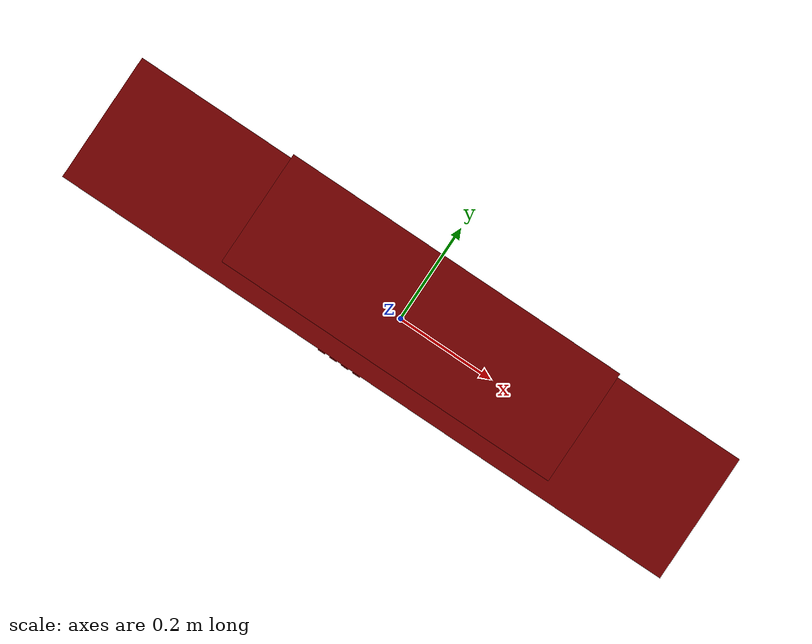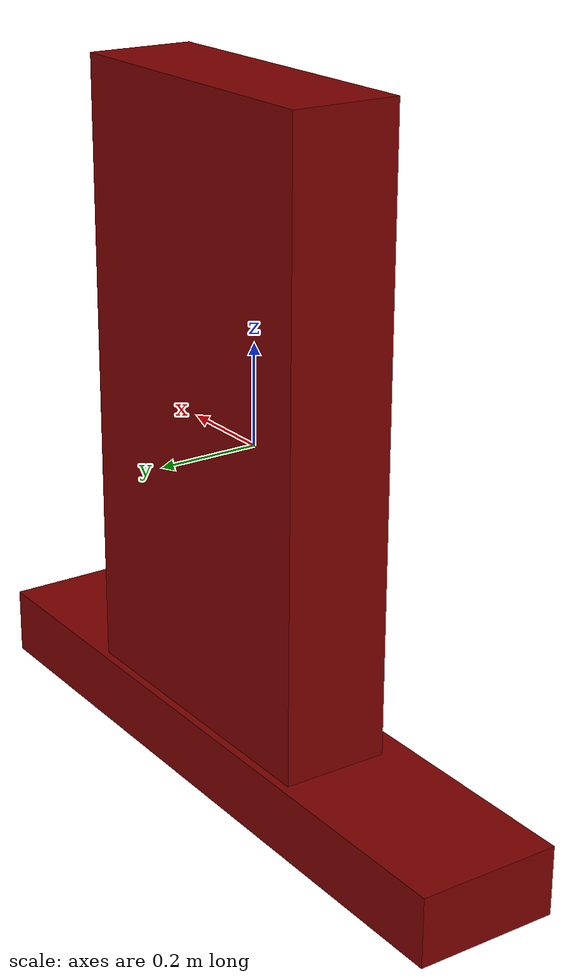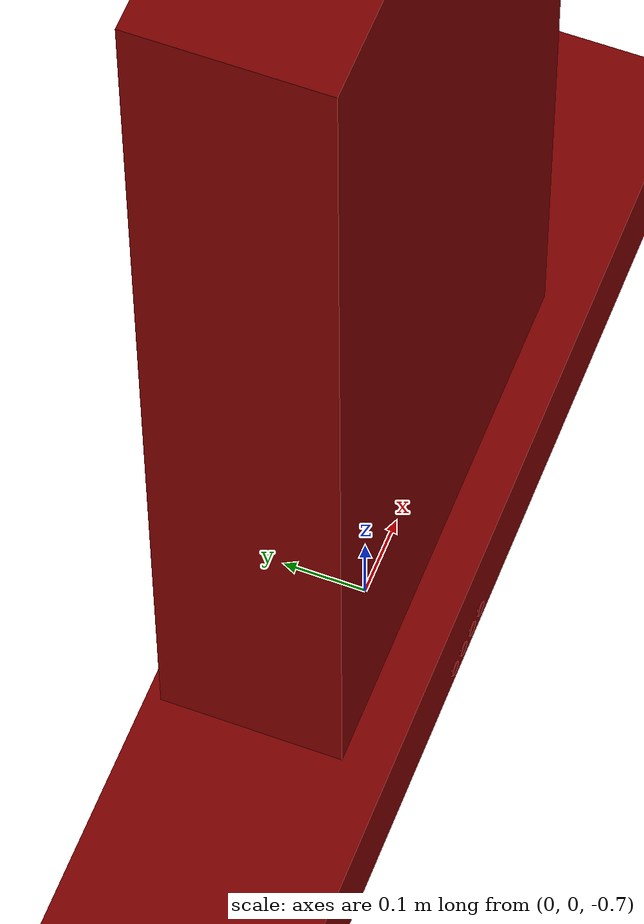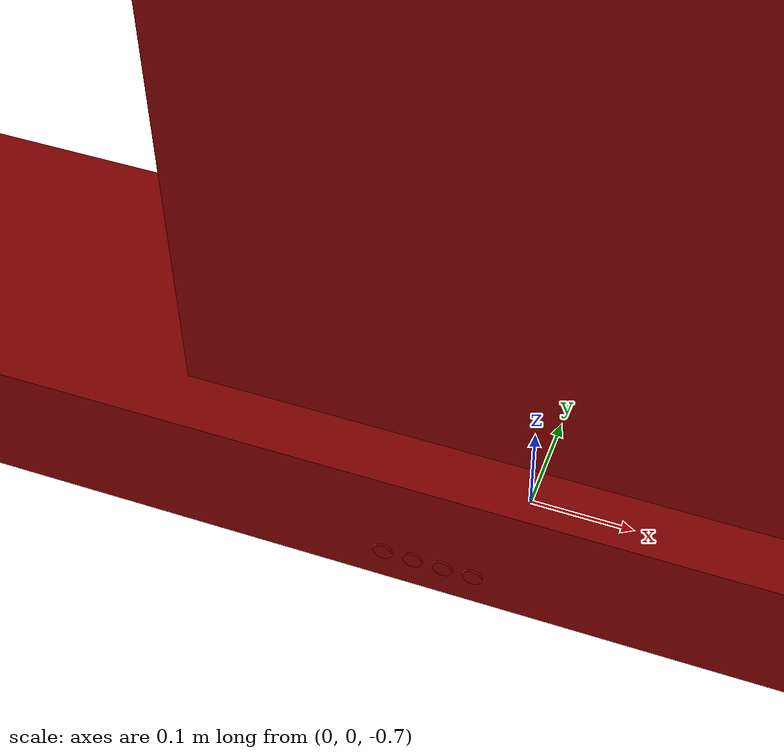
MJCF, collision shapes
<?xml version='1.0' encoding='UTF-8'?>
<mujoco model="model">
  <compiler angle="radian"/>
  <asset>
    <mesh file="visuals/Body001.obj" name="Body001_vis"/>
    <mesh file="visuals/Button001.obj" name="Button001_vis"/>
    <mesh file="visuals/Button002.obj" name="Button002_vis"/>
    <mesh file="visuals/Button003.obj" name="Button003_vis"/>
    <mesh file="visuals/Button004.obj" name="Button004_vis"/>
    <texture file="visuals/T_BC001.png" name="Body001_material" type="2d"/>
    <material name="Body001_material" rgba="1 1 1 1.0" texture="Body001_material" shininess="1" specular="1"/>
    <texture file="visuals/T_BC001.png" name="Button001_material" type="2d"/>
    <material name="Button001_material" rgba="1 1 1 1.0" texture="Button001_material" shininess="0.4472135901451111" specular="0.3103448502657381"/>
    <texture file="visuals/T_BC001.png" name="Button002_material" type="2d"/>
    <material name="Button002_material" rgba="1 1 1 1.0" texture="Button002_material" shininess="0.4472135901451111" specular="0.3103448502657381"/>
    <texture file="visuals/T_BC001.png" name="Button003_material" type="2d"/>
    <material name="Button003_material" rgba="1 1 1 1.0" texture="Button003_material" shininess="0.4472135901451111" specular="0.3103448502657381"/>
    <texture file="visuals/T_BC001.png" name="Button004_material" type="2d"/>
    <material name="Button004_material" rgba="1 1 1 1.0" texture="Button004_material" shininess="0.4472135901451111" specular="0.3103448502657381"/>
  </asset>
  <default>
    <default class="visual">
      <geom conaffinity="0" contype="0" group="1" type="mesh"/>
    </default>
    <default class="collision">
      <geom group="0" rgba="0.5 0 0 0.5"/>
    </default>
    <default class="spawn">
      <geom group="0" rgba="1 1 1 0.5" contype="0" conaffinity="0"/>
      <site group="0" rgba="1 1 1 0.5"/>
    </default>
    <default class="region">
      <geom group="1" conaffinity="0" contype="0" rgba="0 1 0 0"/>
    </default>
  </default>
  <worldbody>
    <body>
      <body name="object">
        <geom mesh="Body001_vis" type="mesh" solimp="0.998 0.998 0.001" solref="0.001 1" density="100" friction="0.95 0.3 0.1" class="visual" material="Body001_material"/>
        <geom class="collision" type="box" pos="0.026843 0.020370 0.071599" size="0.32519087195396423 0.10661716014146805 0.6165731549263" quat="1.0 0.0 0.0 0.0"/>
        <geom class="collision" type="box" pos="-0.000000 0.001580 -0.606776" size="0.7148110866546631 0.14193961024284363 0.06874023377895355" quat="1.0 0.0 0.0 0.0"/>
        <geom class="collision" type="box" pos="-0.004620 0.001517 -0.678081" size="0.6758305430412292 0.10901929438114166 0.010091823525726795" quat="1.0 0.0 0.0 0.0"/>
        <body name="Button001">
          <joint axis="0.0 1.0 0.0" pos="-0.094884 -0.136689 -0.634458" limited="true" name="Button001_joint" range="0.0 0.001" type="slide" damping="1" frictionloss="1" armature=".01" stiffness="0.05"/>
          <geom mesh="Button001_vis" type="mesh" solimp="0.998 0.998 0.001" solref="0.001 1" density="100" friction="0.95 0.3 0.1" class="visual" material="Button001_material"/>
          <geom class="collision" type="cylinder" pos="-0.094943 -0.143349 -0.634535" size="0.009030350483953953 0.0009923813631758094" quat="0.7071067094802856 0.7071068286895752 0.0 0.0"/>
        </body>
        <body name="Button002">
          <joint axis="0.0 1.0 0.0" pos="-0.067131 -0.136689 -0.634458" limited="true" name="Button002_joint" range="0.0 0.001" type="slide" damping="1" frictionloss="1" armature=".01" stiffness="0.05"/>
          <geom mesh="Button002_vis" type="mesh" solimp="0.998 0.998 0.001" solref="0.001 1" density="100" friction="0.95 0.3 0.1" class="visual" material="Button002_material"/>
          <geom class="collision" type="cylinder" pos="-0.067120 -0.143349 -0.634535" size="0.009030350483953953 0.0009923813631758094" quat="0.7071067094802856 0.7071068286895752 0.0 0.0"/>
        </body>
        <body name="Button003">
          <joint axis="0.0 1.0 0.0" pos="-0.039376 -0.136689 -0.634458" limited="true" name="Button003_joint" range="0.0 0.001" type="slide" damping="1" frictionloss="1" armature=".01" stiffness="0.05"/>
          <geom mesh="Button003_vis" type="mesh" solimp="0.998 0.998 0.001" solref="0.001 1" density="100" friction="0.95 0.3 0.1" class="visual" material="Button003_material"/>
          <geom class="collision" type="cylinder" pos="-0.039235 -0.143349 -0.634535" size="0.009030350483953953 0.0009923813631758094" quat="0.7071067094802856 0.7071068286895752 0.0 0.0"/>
        </body>
        <body name="Button004">
          <joint axis="0.0 1.0 0.0" pos="-0.011623 -0.136689 -0.634458" limited="true" name="Button004_joint" range="0.0 0.001" type="slide" damping="1" frictionloss="1" armature=".01" stiffness="0.05"/>
          <geom mesh="Button004_vis" type="mesh" solimp="0.998 0.998 0.001" solref="0.001 1" density="100" friction="0.95 0.3 0.1" class="visual" material="Button004_material"/>
          <geom class="collision" type="cylinder" pos="-0.011551 -0.143349 -0.634535" size="0.009030350483953953 0.0009923813631758094" quat="0.7071067094802856 0.7071068286895752 0.0 0.0"/>
        </body>
        <geom class="region" name="reg_main" type="box" pos="0.0003489999999999882 0.0015949999999999992 -0.0020195000000000074" size="0.7144440000000001 0.14696199999999998 0.6854075"/>
      </body>
    </body>
  </worldbody>
  <actuator>
    <motor name="Button001_joint_actuator" joint="Button001_joint" gear="0.5"/>
    <motor name="Button002_joint_actuator" joint="Button002_joint" gear="0.5"/>
    <motor name="Button003_joint_actuator" joint="Button003_joint" gear="0.5"/>
    <motor name="Button004_joint_actuator" joint="Button004_joint" gear="0.5"/>
  </actuator>
</mujoco>
